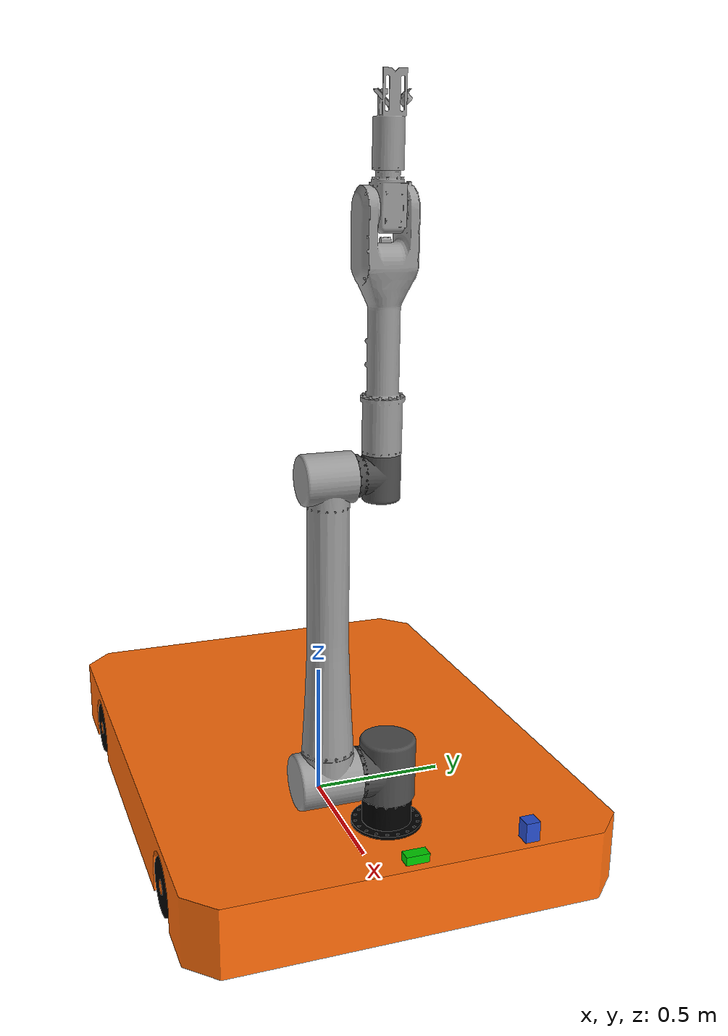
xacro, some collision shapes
<?xml version="1.0"?>
<robot name= "mobile_manipulator"  xmlns:xacro="http://www.ros.org/wiki/xacro">

	<!-- agv description -->
	<xacro:include filename="$(find agv_description)/urdf/agv.xacro" />
	<!-- manipulator description -->
	<xacro:include filename="$(find manipulator_description)/urdf/manipulator_description.urdf.xacro" />

  <joint
    name="connect_joint"
    type="fixed">
    <origin
      xyz="0.7 0 0.25"
      rpy="0 0 -3.1415926" />
    <parent
      link="base_Link" />
    <child
      link="base_link" />
    <axis
      xyz="0 0 0" />
  </joint>
</robot>

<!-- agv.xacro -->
<robot name= "agv"  xmlns:xacro="http://www.ros.org/wiki/xacro">

	<!-- Robot constants and properties -->
	<xacro:include filename="$(find agv_description)/urdf/agv_properties.xacro" />
	<!-- Gazebo aspects of the robot -->
	<xacro:include filename="$(find agv_description)/urdf/agv.gazebo" />
	<!-- Inertia matrices -->
	<xacro:include filename="$(find agv_description)/urdf/macros.xacro" />
        <!-- import Rviz color-->
        <xacro:include filename="$(find agv_description)/urdf/materials.xacro" />

  <link
    name="base_footprint">
    <inertial>
      <origin
        xyz="0 0 0"
        rpy="0 0 0" />
      <mass
        value="2.01061929829948E-06" />
      <inertia
        ixx="8.04274527577102E-12"
        ixy="0"
        ixz="0"
        iyy="8.04274527577102E-12"
        iyz="0"
        izz="1.60849543863958E-11" />
    </inertial>
    <visual>
      <origin
        xyz="0 0 0"
        rpy="0 0 0" />
      <geometry>
        <mesh
          filename="package://agv_description/meshes/base_footprint.STL" />
      </geometry>
      <material name="grey" />
    </visual>
    <collision>
      <origin
        xyz="0 0 0"
        rpy="0 0 0" />
      <geometry>
        <mesh
          filename="package://agv_description/meshes/base_footprint.STL" />
      </geometry>
    </collision>
  </link>

  <!-- base link-->
  <link
    name="base_Link">
    <inertial>
      <!--origin
        xyz="0 0 0.125713618058247"
        rpy="0 0 0" /-->
      <origin
        xyz="0 0 0"
        rpy="0 0 0"/>
      <mass
        value="1000" />
      <box_inertia
        m="1000"
        x="2"
        y="1.5"
        z="0.23" />
    </inertial>
    <visual>
      <origin
        xyz="0 0 0"
        rpy="0 0 0" />
      <geometry>
        <mesh
          filename="package://agv_description/meshes/base_Link.STL" />
      </geometry>
      <material name="orange" />
    </visual>
    <collision>
      <origin
        xyz="0 0 0"
        rpy="0 0 0" />
      <geometry>
        <mesh
          filename="package://agv_description/meshes/base_Link.STL" />
      </geometry>
    </collision>
  </link>

  <joint
    name="base_footprint_joint"
    type="fixed">
    <origin
      xyz="0 0 4E-05"
      rpy="0 0 0" />
    <parent
      link="base_footprint" />
    <child
      link="base_Link" />
    <axis
      xyz="0 0 0" />
  </joint>

 <!-- front left link-->
  <link
    name="fl_Link">
    <inertial>
      <origin
        xyz="0 0 0.035"
        rpy="0 0 0" />
      <mass
        value="2.02796060125243" />
      <cylinder_inertia
        m="5"
        r="0.1"
        h="0.14" />
    </inertial>
    <visual>
      <origin
        xyz="0 0 0"
        rpy="0 0 0" />
      <geometry>
        <mesh
          filename="package://agv_description/meshes/fl_Link.STL" />
      </geometry>
      <material name="black" />
    </visual>
    <collision>
      <origin
        xyz="0 0 0"
        rpy="0 0 0" />
      <geometry>
        <mesh
          filename="package://agv_description/meshes/fl_Link.STL" />
      </geometry>
    </collision>
  </link>

  <joint
    name="fl_joint"
    type="continuous">
    <origin
      xyz="0.6 0.68 0.09"
      rpy="-1.5708 0 0" />
    <parent
      link="base_Link" />
    <child
      link="fl_Link" />
    <axis
      xyz="0 0 1" />
  </joint>

  <!-- back left link-->
  <link
    name="bl_Link">
    <inertial>
      <origin
        xyz="1.11022302462516E-16 0 0.0349886144674467"
        rpy="0 0 0" />
      <mass
        value="5" />
      <cylinder_inertia
        m="5"
        r="0.1"
        h="0.14" />
    </inertial>
    <visual>
      <origin
        xyz="0 0 0"
        rpy="0 0 0" />
      <geometry>
        <mesh
          filename="package://agv_description/meshes/bl_Link.STL" />
      </geometry>
      <material name="black" />

    </visual>
    <collision>
      <origin
        xyz="0 0 0"
        rpy="0 0 0" />
      <geometry>
        <mesh
          filename="package://agv_description/meshes/bl_Link.STL" />
      </geometry>
    </collision>
  </link>

  <joint
    name="bl_joint"
    type="continuous">
    <origin
      xyz="-0.6 0.68 0.0900000000000001"
      rpy="-1.5707963267949 0 0" />
    <parent
      link="base_Link" />
    <child
      link="bl_Link" />
    <axis
      xyz="0 0 1" />
  </joint>

<!-- front right link-->
  <link
    name="fr_Link">
    <inertial>
      <origin
        xyz="0 2.22044604925031E-16 0.0350501592853405"
        rpy="0 0 0" />
      <mass
        value="2.03116301113069" />
      <cylinder_inertia
        m="5"
        r="0.1"
        h="0.14" />
    </inertial>
    <visual>
      <origin
        xyz="0 0 0"
        rpy="0 0 0" />
      <geometry>
        <mesh
          filename="package://agv_description/meshes/fr_Link.STL" />
      </geometry>
      <material name="black" />
    </visual>
    <collision>
      <origin
        xyz="0 0 0"
        rpy="0 0 0" />
      <geometry>
        <mesh
          filename="package://agv_description/meshes/fr_Link.STL" />
      </geometry>
    </collision>
  </link>

  <joint
    name="fr_joint"
    type="continuous">
    <origin
      xyz="0.6 -0.68 0.0900000000000001"
      rpy="1.5707963267949 0 0" />
    <parent
      link="base_Link" />
    <child
      link="fr_Link" />
    <axis
      xyz="0 0 1" />
  </joint>

<!-- back right link-->
  <link
    name="br_Link">
    <inertial>
      <origin
        xyz="0 0 0.0349611985496496"
        rpy="0 0 0" />
      <mass
        value="2.03044090786952" />
      <cylinder_inertia
        m="5"
        r="0.1"
        h="0.14" />
    </inertial>
    <visual>
      <origin
        xyz="0 0 0"
        rpy="0 0 0" />
      <geometry>
        <mesh
          filename="package://agv_description/meshes/br_Link.STL" />
      </geometry>
      <material name="black" />
    </visual>
    <collision>
      <origin
        xyz="0 0 0"
        rpy="0 0 0" />
      <geometry>
        <mesh
          filename="package://agv_description/meshes/br_Link.STL" />
      </geometry>
    </collision>
  </link>

 <joint
    name="br_joint"
    type="continuous">
    <origin
      xyz="-0.6 -0.68 0.0899999999999994"
      rpy="1.5707963267949 0 0" />
    <parent
      link="base_Link" />
    <child
      link="br_Link" />
    <axis
      xyz="0 0 1" />
  </joint>

  <!-- sensors -->
  <xacro:include filename="$(find agv_description)/urdf/sensors.xacro" />
</robot>

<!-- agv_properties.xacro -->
<robot xmlns:xacro="http://www.ros.org/wiki/xacro">

	<!-- Constants -->
	<xacro:property name="PI" value="3.1415926535897931"/>

	<!-- Chassis properties -->
	<xacro:property name="chassisHeight" value="0.0623"/>
	<xacro:property name="chassisLength" value="0.198"/>
	<xacro:property name="chassisWidth" value="0.119"/>
	<xacro:property name="chassisMass" value="0.15"/>

	<!-- Caster wheel properties -->
	<xacro:property name="casterRadius" value="0.021"/>
	<xacro:property name="casterMass" value="0.09"/>
	<xacro:property name="casterOffsetX" value="0.091"/>

	<!-- Differential-drive wheels properties -->
	<xacro:property name="wheelWidth" value="0.026"/>
	<xacro:property name="wheelRadius" value="0.032"/>
	<xacro:property name="wheelMass" value="0.05"/>
	<xacro:property name="wheelOffsetY" value="0.037"/>

	<!-- Hokuyo laser properties -->
	<xacro:property name="hokuyoMass" value="0.01"/>
	<xacro:property name="hokuyoLength" value="0.05"/>
	<xacro:property name="hokuyoWidth" value="0.05"/>
	<xacro:property name="hokuyoHeight" value="0.07"/>
	<xacro:property name="hokuyoOffsetX" value="0.95"/>
	<xacro:property name="hokuyoOffsetY" value="0.4"/>
	<!--xacro:property name="hokuyoOffsetX" value="0.05"/-->
	<xacro:property name="hokuyoOffsetZ" value="0.285"/>
	<!--xacro:property name="hokuyoOffsetZ" value="0.1125"/-->

	<!-- Camera properties -->
	<xacro:property name="cameraLength" value="0.04"/>
	<xacro:property name="cameraWidth" value="0.08"/>
	<xacro:property name="cameraHeight" value="0.03"/>
	<xacro:property name="cameraMass" value="0.01"/>
	<xacro:property name="cameraOffsetX" value="0.95"/>
	<xacro:property name="cameraOffsetZ" value="0.265"/>

</robot>

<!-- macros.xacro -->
<!--
	definitions of some macros for easier description of the robot
-->

<robot xmlns:xacro="http://www.ros.org/wiki/xacro">

  <xacro:macro name="cylinder_inertia" params="m r h">

    <inertia
          ixx="${m*(3*r*r+h*h)/12}"
    			ixy = "0"
    			ixz = "0"
    			iyy="${m*(3*r*r+h*h)/12}"
    			iyz = "0"
    			izz="${m*r*r/2}"
    />
  </xacro:macro>

  <xacro:macro name="box_inertia" params="m x y z">

    <inertia
          ixx="${m*(y*y+z*z)/12}"
    			ixy = "0"
    			ixz = "0"
    			iyy="${m*(x*x+z*z)/12}"
    			iyz = "0"
    			izz="${m*(x*x+z*z)/12}"
    />
  </xacro:macro>

  <xacro:macro name="sphere_inertia" params="m r">

    <inertia
          ixx="${2*m*r*r/5}"
    			ixy = "0"
    			ixz = "0"
    			iyy="${2*m*r*r/5}"
    			iyz = "0"
    			izz="${2*m*r*r/5}"
    />
  </xacro:macro>

<!--
  http://gazebosim.org/tutorials/?tut=ros_control
-->
    <!-- Transmissions for ROS-Control -->
  <xacro:macro name="transmission_block" params="joint_name">

    <transmission name="${joint_name}_trans">
      <type>transmission_interface/SimpleTransmission</type>
      <joint name="${joint_name}">
        <hardwareInterface>hardware_interface/PositionJointInterface</hardwareInterface>
      </joint>
      <actuator name="${joint_name}_Motor">
        <hardwareInterface>hardware_interface/PositionJointInterface</hardwareInterface>
        <mechanicalReduction>1</mechanicalReduction>
      </actuator>
    </transmission>
  </xacro:macro>

  <!-- transmission-->
  <xacro:transmission_block joint_name="fl_joint" />
  <xacro:transmission_block joint_name="fr_joint" />
  <xacro:transmission_block joint_name="bl_joint" />
  <xacro:transmission_block joint_name="br_joint" />

</robot>

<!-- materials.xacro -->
<robot>
	<material name="black">
	  <color rgba="0.0 0.0 0.0 1.0"/>
	</material>

	<material name="blue">
	  <color rgba="0.0 0.0 0.8 1.0"/>
	</material>

	<material name="green">
	  <color rgba="0.0 0.8 0.0 1.0"/>
	</material>

	<material name="grey">
	  <color rgba="0.2 0.2 0.2 1.0"/>
	</material>

	<material name="light_grey">
          <color rgba="0.6 0.6 0.6 1"/>
        </material>

        <material name="dark_grey">
          <color rgba="0.3 0.3 0.3 1"/>
        </material>

	<material name="orange">
	  <color rgba="${255/255} ${108/255} ${10/255} 1.0"/>
	</material>

	<material name="brown">
	  <color rgba="${222/255} ${207/255} ${195/255} 1.0"/>
	</material>

	<material name="red">
	  <color rgba="0.8 0.0 0.0 1.0"/>
	</material>

	<material name="white">
	  <color rgba="1.0 1.0 1.0 1.0"/>
	</material>

  </robot>

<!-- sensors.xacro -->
<robot xmlns:xacro="http://www.ros.org/wiki/xacro">

  <link name="camera_link">
    <collision>
      <origin xyz="0 0 0"
              rpy="0 0 0"/>
      <geometry>
        <box size="${cameraLength}
                   ${cameraWidth}
                   ${cameraHeight}"/>
      </geometry>
    </collision>

    <visual>
      <origin xyz="0 0 0"
              rpy="0 0 0"/>
      <geometry>
        <box size="${cameraLength}
                   ${cameraWidth}
                   ${cameraHeight}"/>
      </geometry>
      <material name="green"/>
    </visual>

    <inertial>
      <mass value="${cameraMass}" />
      <origin xyz="0 0 0"
              rpy="0 0 0"/>
      <box_inertia m="${cameraMass}"
                   x="${cameraLength}"
                   y="${cameraWidth}"
                   z="${cameraHeight}" />
    </inertial>

  </link>

  <joint name="camera_joint" type="fixed">
    <axis xyz="0 1 0" />
    <origin xyz="${cameraOffsetX} 0 ${cameraOffsetZ}"
            rpy="0 0 0"/>
    <parent link="base_Link"/>
    <child link="camera_link"/>
  </joint>

  <joint name="hokuyo_joint" type="fixed">
    <axis xyz="0 1 0" />
    <origin xyz="${hokuyoOffsetX} ${hokuyoOffsetY} ${hokuyoOffsetZ}"
            rpy="0 0 0"/>
    <parent link="base_Link"/>
    <child link="hokuyo_link"/>
  </joint>

  <!-- Hokuyo Laser -->
  <link name="hokuyo_link">
    <collision>
      <origin xyz="0 0 0"
              rpy="0 0 0"/>
      <geometry>
        <box size="${hokuyoLength}
                   ${hokuyoWidth}
                   ${hokuyoHeight}"/>
      </geometry>
    </collision>

    <visual>
      <origin xyz="0 0 0"
              rpy="0 0 0"/>
      <geometry>
        <mesh filename="package://agv_description/meshes/hokuyo.dae"/>
      </geometry>
    </visual>

    <inertial>
      <mass value="${hokuyoMass}" />
      <origin xyz="0 0 0"
              rpy="0 0 0"/>
      <box_inertia
        m="${hokuyoMass}"
        x="${hokuyoLength}"
        y="${hokuyoWidth}"
        z="${hokuyoHeight}"/>
    </inertial>

  </link>

  <!-- IMU sensor -->
  <joint name="imu_joint" type="fixed">
    <parent link="base_Link"/>
    <child link="imu_link"/>
    <origin xyz="0 0 0" rpy="0 0 0"/>
  </joint>

  <link name="imu_link">
   <inertial>
      <origin
        xyz="0 0 0"
        rpy="0 0 0" />
      <mass
        value="0.010" />
      <inertia
        ixx="1"
        ixy="0"
        ixz="0"
        iyy="1"
        iyz="0"
        izz="1" />
    </inertial>
    <visual>
      <origin
        xyz="0 0 0"
        rpy="0 0 0" />
      <geometry>
	<box size="0.01 0.01 0.01"/>
      </geometry>
      <material name="red" />
    </visual>
    <collision>
      <origin
        xyz="0 0 0"
        rpy="0 1.5707 1.5707" />
      <geometry>
	<box size="0.05 0.05 0.05"/>
      </geometry>
    </collision>
  </link>

</robot>

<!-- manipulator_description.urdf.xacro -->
<robot name="manipulator_description" xmlns:xacro="http://www.ros.org/wiki/xacro">

  <!-- Include materials -->
	<!--xacro:include filename="$(find manipulator_description)/urdf/materials.xacro" /-->

<!-- base link-->
    <link name="base_link">

<inertial>
            <origin xyz="-3.10150703372852E-09 7.69217301046195E-10 0.0392285802246154" rpy="0 0 0" />
            <mass value="1000" />
            <inertia ixx="100.0" ixy="0.0" ixz="0.0" iyy="100.0" iyz="0.0" izz="100.0" />
        </inertial>

        <visual>
            <origin xyz="0 0 0" rpy="0 0 0" />
            <geometry>
                <mesh filename="package://manipulator_description/meshes/base_link.STL" />
            </geometry>
            <material name="black" />
        </visual>
        <collision>
            <origin xyz="0 0 0" rpy="0 0 0" />
            <geometry>
                <mesh filename="package://manipulator_description/meshes/base_link.STL" />
            </geometry>
        </collision>
    </link>

    <link name="Link_1">

<inertial>
            <origin xyz="-3.48593329235086E-07 0.0109897641420375 -0.00482036436458533" rpy="0 0 0" />
            <mass value="1" />
            <inertia ixx="100.0" ixy="0.0" ixz="0.0" iyy="100.0" iyz="0.0" izz="100.0" />-->
        </inertial>

        <visual>
            <origin xyz="0 0 0" rpy="0 0 0" />
            <geometry>
                <mesh filename="package://manipulator_description/meshes/Link_1.STL" />
            </geometry>
            <material name="dark_grey" />
        </visual>
        <collision>
            <origin xyz="0 0 0" rpy="0 0 0" />
            <geometry>
                <mesh filename="package://manipulator_description/meshes/Link_1.STL" />
            </geometry>
        </collision>
    </link>
    <joint name="joint_1" type="continuous">
        <origin xyz="0 0 0.2" rpy="0 0 0" />
        <parent link="base_link" />
        <child link="Link_1" />
        <axis xyz="0 0 -1" />
        <limit lower="0" upper="0" effort="1000" velocity="1.5708" />
    </joint>
    <link name="Link_2">

<inertial>
            <origin xyz="4.64288584211257E-08 -0.450307572690538 0.207197326540885" rpy="0 0 0" />
            <mass value="1" />
            <inertia ixx="100.0" ixy="0.0" ixz="0.0" iyy="100.0" iyz="0.0" izz="100.0" />
        </inertial>

        <visual>
            <origin xyz="0 0 0" rpy="0 0 0" />
            <geometry>
                <mesh filename="package://manipulator_description/meshes/Link_2.STL" />
            </geometry>
            <material name="light_grey" />
        </visual>
        <collision>
            <origin xyz="0 0 0" rpy="0 0 0" />
            <geometry>
                <mesh filename="package://manipulator_description/meshes/Link_2.STL" />
            </geometry>
        </collision>
    </link>
    <joint name="joint_2" type="revolute">
        <origin xyz="0 0 0" rpy="-1.5708 0 0" />
        <parent link="Link_1" />
        <child link="Link_2" />
        <axis xyz="0 0 -1" />
        <limit lower="-0.6236" upper="1.96" effort="1000" velocity="1.5708" />
    </joint>
    <link name="Link_3">

<inertial>
            <origin xyz="-0.000152239281300259 -6.44384849479815E-08 -0.151975016298213" rpy="0 0 0" />
            <mass value="1" />
            <inertia ixx="40.0" ixy="0.0" ixz="0.0" iyy="40.0" iyz="0.0" izz="40.0" />
        </inertial>

        <visual>
            <origin xyz="0 0 0" rpy="0 0 0" />
            <geometry>
                <mesh filename="package://manipulator_description/meshes/Link_3.STL" />
            </geometry>
            <material name="dark_grey" />
        </visual>
        <collision>
            <origin xyz="0 0 0" rpy="0 0 0" />
            <geometry>
                <mesh filename="package://manipulator_description/meshes/Link_3.STL" />
            </geometry>
        </collision>
    </link>
    <joint name="joint_3" type="revolute">
        <origin xyz="0 -1 0.208" rpy="0 0 1.5708" />
        <parent link="Link_2" />
        <child link="Link_3" />
        <axis xyz="0 0 1" />
        <limit lower="-2.9" upper="2.9" effort="848" velocity="1.9477" />
    </joint>
    <link name="Link_4">

<inertial>
            <origin xyz="-0.00185023742496417 -0.00085145709068035 0.427869656938719" rpy="0 0 0" />
            <mass value="1" />
            <inertia ixx="40.0" ixy="0.0" ixz="0.0" iyy="40.0" iyz="0.0" izz="40.0" />
        </inertial>

        <visual>
            <origin xyz="0 0 0" rpy="0 0 0" />
            <geometry>
                <mesh filename="package://manipulator_description/meshes/Link_4.STL" />
            </geometry>
            <material name="light_grey" />
        </visual>
        <collision>
            <origin xyz="0 0 0" rpy="0 0 0" />
            <geometry>
                <mesh filename="package://manipulator_description/meshes/Link_4.STL" />
            </geometry>
        </collision>
    </link>
    <joint name="joint_4" type="revolute">
        <origin xyz="-0.001 0 -0.169" rpy="0.23843 1.5708 -2.9032" />
        <parent link="Link_3" />
        <child link="Link_4" />
        <axis xyz="0 0 -1" />
        <limit lower="-0.6" upper="0.6" effort="284" velocity="2.6179" />
    </joint>
    <link name="Link_5">

<inertial>
            <origin xyz="-0.00548935425108261 -2.0681120402842E-05 -0.018180509143497" rpy="0 0 0" />
            <mass value="0.1" />
            <inertia ixx="10.0" ixy="0.0" ixz="0.0" iyy="10.0" iyz="0.0" izz="10.0" />
        </inertial>

        <visual>
            <origin xyz="0 0 0" rpy="0 0 0" />
            <geometry>
                <mesh filename="package://manipulator_description/meshes/Link_5.STL" />
            </geometry>
            <material name="light_grey" />
        </visual>
        <collision>
            <origin xyz="0 0 0" rpy="0 0 0" />
            <geometry>
                <mesh filename="package://manipulator_description/meshes/Link_5.STL" />
            </geometry>
        </collision>
    </link>
    <joint name="joint_5" type="revolute">
        <origin xyz="0 0 0.77" rpy="3.1326 0 -3.1299" />
        <parent link="Link_4" />
        <child link="Link_5" />
        <axis xyz="1 0 0" />
        <limit lower="-2" upper="2" effort="80" velocity="3.665" />
    </joint>
    <link name="Link_6">

<inertial>
            <origin xyz="-0.00240134732899384 -0.000145858477892405 -0.169290413904326" rpy="0 0 0" />
            <mass value="0.459681563463666" />
            <inertia ixx="1.0" ixy="0.0" ixz="0.0" iyy="1.0" iyz="0.0" izz="1.0" />
        </inertial>

        <visual>
            <origin xyz="0 0 0" rpy="0 0 0" />
            <geometry>
                <mesh filename="package://manipulator_description/meshes/Link_6.STL" />
            </geometry>
            <material name="light_grey" />
        </visual>
        <collision>
            <origin xyz="0 0 0" rpy="0 0 0" />
            <geometry>
                <mesh filename="package://manipulator_description/meshes/Link_6.STL" />
            </geometry>
        </collision>
    </link>
    <joint name="joint_6" type="revolute">
        <origin xyz="-0.0045 -1.7975E-05 -0.3655" rpy="3.1416 0 1.6078" />
        <parent link="Link_5" />
        <child link="Link_6" />
        <axis xyz="0 0 1" />
        <limit lower="-3.1415" upper="3.1415" effort="86" velocity="3.665" />
    </joint>
    <link name="push_Link">

<inertial>
            <origin xyz="0.0204799322370691 -0.000588633057326891 0.129588528024653" rpy="0 0 0" />
            <mass value="0.0363787354805148" />
            <inertia ixx="1.0" ixy="0.0" ixz="0.0" iyy="1.0" iyz="0.0" izz="1.0" />
        </inertial>

        <visual>
            <origin xyz="0 0 0" rpy="0 0 0" />
            <geometry>
                <mesh filename="package://manipulator_description/meshes/push_Link.STL" />
            </geometry>
            <material name="light_grey" />
        </visual>
        <collision>
            <origin xyz="0 0 0" rpy="0 0 0" />
            <geometry>
                <mesh filename="package://manipulator_description/meshes/push_Link.STL" />
            </geometry>
        </collision>
    </link>
    <joint name="push_joint" type="prismatic">
        <origin xyz="-0.019208 0 -0.22247" rpy="0 0 -1.5454" />
        <parent link="Link_6" />
        <child link="push_Link" />
        <axis xyz="0 0 -1" />
        <limit lower="-0.1" upper="0.0" effort="100" velocity="1" />
        <dynamics damping="50" friction="1" />
        <safety_controller soft_upper="0" soft_lower="-0.15" k_position="20" k_velocity="20" />
    </joint>
    <!-- Transmissions for ROS-Control -->

    <transmission name="trans_joint_1">
        <type>transmission_interface/SimpleTransmission</type>
        <joint name="joint_1">
            <hardwareInterface>hardware_interface/VelocityJointInterface</hardwareInterface>
        </joint>
        <actuator name="joint_1_motor">
            <hardwareInterface>hardware_interface/VelocityJointInterface</hardwareInterface>
            <mechanicalReduction>1</mechanicalReduction>
        </actuator>
    </transmission>
    <transmission name="trans_joint_2">
        <type>transmission_interface/SimpleTransmission</type>
        <joint name="joint_2">
            <hardwareInterface>hardware_interface/VelocityJointInterface</hardwareInterface>
        </joint>
        <actuator name="joint_2_motor">
            <hardwareInterface>hardware_interface/VelocityJointInterface</hardwareInterface>
            <mechanicalReduction>1</mechanicalReduction>
        </actuator>
    </transmission>
    <transmission name="trans_joint_3">
        <type>transmission_interface/SimpleTransmission</type>
        <joint name="joint_3">
            <hardwareInterface>hardware_interface/VelocityJointInterface</hardwareInterface>
        </joint>
        <actuator name="joint_3_motor">
            <hardwareInterface>hardware_interface/VelocityJointInterface</hardwareInterface>
            <mechanicalReduction>1</mechanicalReduction>
        </actuator>
    </transmission>
    <transmission name="trans_joint_4">
        <type>transmission_interface/SimpleTransmission</type>
        <joint name="joint_4">
            <hardwareInterface>hardware_interface/VelocityJointInterface</hardwareInterface>
        </joint>
        <actuator name="joint_4_motor">
            <hardwareInterface>hardware_interface/VelocityJointInterface</hardwareInterface>
            <mechanicalReduction>1</mechanicalReduction>
        </actuator>
    </transmission>
    <transmission name="trans_joint_5">
        <type>transmission_interface/SimpleTransmission</type>
        <joint name="joint_5">
            <hardwareInterface>hardware_interface/VelocityJointInterface</hardwareInterface>
        </joint>
        <actuator name="joint_5_motor">
            <hardwareInterface>hardware_interface/VelocityJointInterface</hardwareInterface>
            <mechanicalReduction>1</mechanicalReduction>
        </actuator>
    </transmission>
    <transmission name="trans_joint_6">
        <type>transmission_interface/SimpleTransmission</type>
        <joint name="joint_6">
            <hardwareInterface>hardware_interface/VelocityJointInterface</hardwareInterface>
        </joint>
        <actuator name="joint_6_motor">
            <hardwareInterface>hardware_interface/VelocityJointInterface</hardwareInterface>
            <mechanicalReduction>1</mechanicalReduction>
        </actuator>
    </transmission>
    <transmission name="trans_push_joint">
        <type>transmission_interface/SimpleTransmission</type>
        <joint name="push_joint">
            <hardwareInterface>hardware_interface/VelocityJointInterface</hardwareInterface>
        </joint>
        <actuator name="push_joint_motor">
            <hardwareInterface>hardware_interface/VelocityJointInterface</hardwareInterface>
            <mechanicalReduction>1</mechanicalReduction>
        </actuator>
    </transmission>

 <!-- ros_control plugin -->
    <gazebo>
        <plugin name="gazebo_ros_control" filename="libgazebo_ros_control.so">
            <robotNamespace>/manipulator_description</robotNamespace>
            <robotSimType>gazebo_ros_control/DefaultRobotHWSim</robotSimType>
            <legacyModeNS>true</legacyModeNS>
        </plugin>
    </gazebo>

  <!-- Gazebo Link properties
  https://github.com/osrf/gazebo/blob/master/media/materials/scripts/gazebo.material
      -->
  <gazebo reference="base_link">
    <material>Gazebo/Black</material>
  </gazebo>

  <gazebo reference="Link_1">
    <material>Gazebo/DarkGrey</material>
  </gazebo>

  <gazebo reference="Link_2">
    <material>Gazebo/Grey</material>
  </gazebo>

  <gazebo reference="Link_3">
    <material>Gazebo/DarkGrey</material>
  </gazebo>

  <gazebo reference="Link_4">
    <material>Gazebo/Grey</material>
  </gazebo>

  <gazebo reference="Link_5">
    <material>Gazebo/Grey</material>
  </gazebo>

  <gazebo reference="Link_6">
    <material>Gazebo/Grey</material>
  </gazebo>

  <gazebo reference="push_Link">
    <material>Gazebo/Grey</material>
  </gazebo>
</robot>
